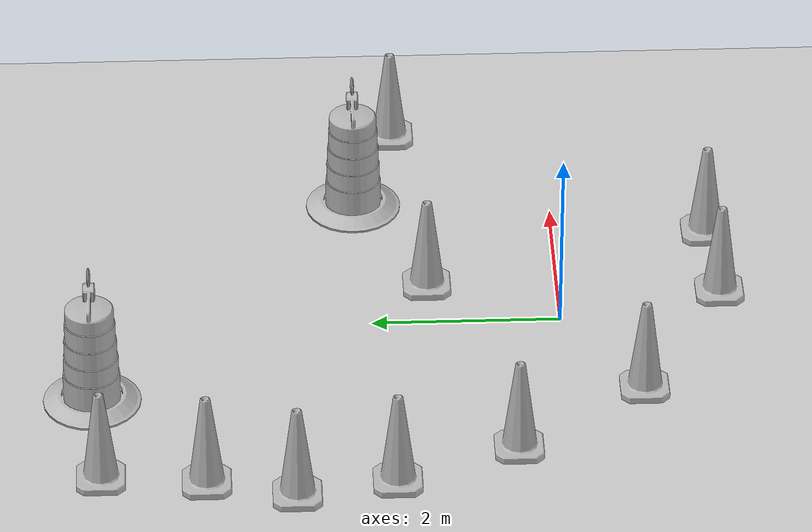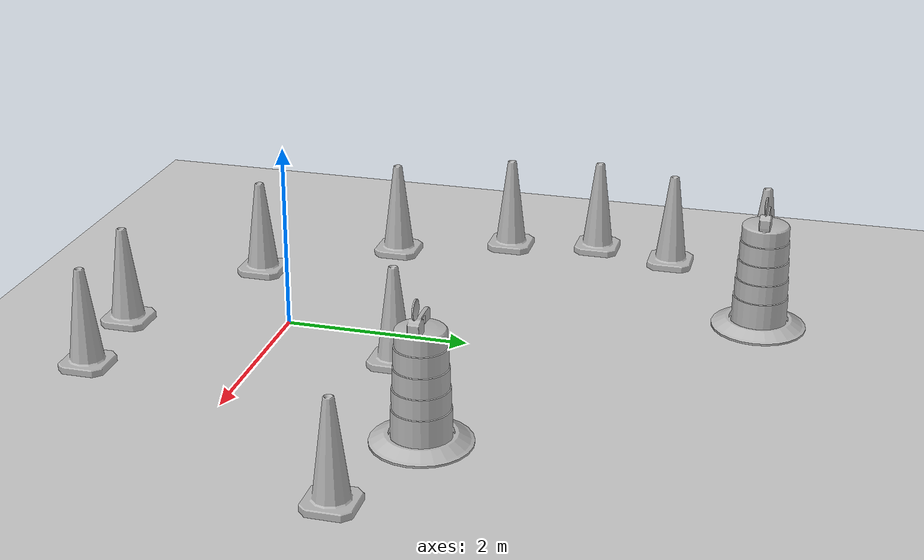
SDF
<sdf version="1.7">
 <world name="default">
  <light name="sun" type="directional">
   <pose>0 0 10 0 -0 0</pose>
   <diffuse>0.8 0.8 0.8 1</diffuse>
   <specular>0.2 0.2 0.2 1</specular>
   <attenuation>
    <range>1000</range>
    <constant>0.9</constant>
    <linear>0.01</linear>
    <quadratic>0.001</quadratic>
   </attenuation>
   <direction>-0.5 0.1 -0.9</direction>
   <spot><inner_angle>0</inner_angle><outer_angle>0</outer_angle><falloff>0</falloff></spot>
  </light>
  <model name="ground_plane">
   <static>1</static>
   <link name="link">
    <collision name="collision">
     <geometry><plane><normal>0 0 1</normal><size>100 100</size></plane></geometry>
     <surface><friction><ode><mu>100</mu><mu2>50</mu2></ode></friction></surface>
    </collision>
    <visual name="visual">
     <cast_shadows>0</cast_shadows>
     <geometry><plane><normal>0 0 1</normal><size>100 100</size></plane></geometry>
     <material>
      <script><uri>file://media/materials/scripts/gazebo.material</uri><name>Gazebo/Grey</name></script>
     </material>
    </visual>
   </link>
  </model>
  <gravity>0 0 -9.8</gravity>
  <magnetic_field>6e-06 2.3e-05 -4.2e-05</magnetic_field>
  <atmosphere type="adiabatic"/>
  <physics type="ode">
   <max_step_size>0.001</max_step_size>
   <real_time_factor>1</real_time_factor>
   <real_time_update_rate>1000</real_time_update_rate>
  </physics>
  <scene><ambient>0.4 0.4 0.4 1</ambient><background>0.7 0.7 0.7 1</background><shadows>1</shadows></scene>
  <audio><device>default</device></audio>
  <spherical_coordinates>
   <surface_model>EARTH_WGS84</surface_model>
   <latitude_deg>0</latitude_deg>
   <longitude_deg>0</longitude_deg>
   <elevation>0</elevation>
   <heading_deg>0</heading_deg>
  </spherical_coordinates>
  <model name="Construction Cone">
   <link name="link">
    <collision name="collision">
     <geometry>
      <mesh><scale>10 10 10</scale><uri>model://construction_cone/meshes/construction_cone.dae</uri></mesh>
     </geometry>
    </collision>
    <visual name="visual">
     <geometry>
      <mesh><scale>10 10 10</scale><uri>model://construction_cone/meshes/construction_cone.dae</uri></mesh>
     </geometry>
    </visual>
    <inertial>
     <inertia><ixx>1</ixx><ixy>0</ixy><ixz>0</ixz><iyy>1</iyy><iyz>0</iyz><izz>1</izz></inertia>
     <mass>1</mass>
    </inertial>
   </link>
   <pose>-2.77998 1.83038 -0 0 -0 0</pose>
  </model>
  <model name="Construction Cone_0">
   <link name="link">
    <collision name="collision">
     <geometry>
      <mesh><scale>10 10 10</scale><uri>model://construction_cone/meshes/construction_cone.dae</uri></mesh>
     </geometry>
    </collision>
    <visual name="visual">
     <geometry>
      <mesh><scale>10 10 10</scale><uri>model://construction_cone/meshes/construction_cone.dae</uri></mesh>
     </geometry>
    </visual>
    <inertial>
     <inertia><ixx>1</ixx><ixy>0</ixy><ixz>0</ixz><iyy>1</iyy><iyz>0</iyz><izz>1</izz></inertia>
     <mass>1</mass>
    </inertial>
   </link>
   <pose>0.648174 1.39178 -0 0 -0 0</pose>
  </model>
  <model name="Construction Cone_1">
   <link name="link">
    <collision name="collision">
     <geometry>
      <mesh><scale>10 10 10</scale><uri>model://construction_cone/meshes/construction_cone.dae</uri></mesh>
     </geometry>
    </collision>
    <visual name="visual">
     <geometry>
      <mesh><scale>10 10 10</scale><uri>model://construction_cone/meshes/construction_cone.dae</uri></mesh>
     </geometry>
    </visual>
    <inertial>
     <inertia><ixx>1</ixx><ixy>0</ixy><ixz>0</ixz><iyy>1</iyy><iyz>0</iyz><izz>1</izz></inertia>
     <mass>1</mass>
    </inertial>
   </link>
   <pose>-1.2753 -0.796966 -0 -0 -0 -0</pose>
  </model>
  <model name="Construction Cone_2">
   <link name="link">
    <collision name="collision">
     <geometry>
      <mesh><scale>10 10 10</scale><uri>model://construction_cone/meshes/construction_cone.dae</uri></mesh>
     </geometry>
    </collision>
    <visual name="visual">
     <geometry>
      <mesh><scale>10 10 10</scale><uri>model://construction_cone/meshes/construction_cone.dae</uri></mesh>
     </geometry>
    </visual>
    <inertial>
     <inertia><ixx>1</ixx><ixy>0</ixy><ixz>0</ixz><iyy>1</iyy><iyz>0</iyz><izz>1</izz></inertia>
     <mass>1</mass>
    </inertial>
   </link>
   <pose>-2.73832 3.77508 -0 0 -0 0</pose>
  </model>
  <model name="Construction Barrel">
   <link name="link">
    <inertial>
     <pose>0 0 0.4 0 -0 0</pose>
     <mass>500</mass>
     <inertia><ixx>51.2096</ixx><iyy>51.2096</iyy><izz>25</izz><ixy>0</ixy><ixz>0</ixz><iyz>0</iyz></inertia>
    </inertial>
    <collision name="collision">
     <geometry><mesh><uri>model://construction_barrel/meshes/construction_barrel.dae</uri></mesh></geometry>
    </collision>
    <visual name="visual">
     <geometry><mesh><uri>model://construction_barrel/meshes/construction_barrel.dae</uri></mesh></geometry>
    </visual>
   </link>
   <pose>-1.2649 4.94834 1e-06 3e-06 2e-06 -1.5e-05</pose>
  </model>
  <model name="Construction Barrel_0">
   <link name="link">
    <inertial>
     <pose>0 0 0.4 0 -0 0</pose>
     <mass>500</mass>
     <inertia><ixx>51.2096</ixx><iyy>51.2096</iyy><izz>25</izz><ixy>0</ixy><ixz>0</ixz><iyz>0</iyz></inertia>
    </inertial>
    <collision name="collision">
     <geometry><mesh><uri>model://construction_barrel/meshes/construction_barrel.dae</uri></mesh></geometry>
    </collision>
    <visual name="visual">
     <geometry><mesh><uri>model://construction_barrel/meshes/construction_barrel.dae</uri></mesh></geometry>
    </visual>
   </link>
   <pose>2.18476 2.12803 -5e-06 -7e-06 -1e-05 -1.5e-05</pose>
  </model>
  <model name="Construction Cone_3">
   <link name="link">
    <collision name="collision">
     <geometry>
      <mesh><scale>10 10 10</scale><uri>model://construction_cone/meshes/construction_cone.dae</uri></mesh>
     </geometry>
    </collision>
    <visual name="visual">
     <geometry>
      <mesh><scale>10 10 10</scale><uri>model://construction_cone/meshes/construction_cone.dae</uri></mesh>
     </geometry>
    </visual>
    <inertial>
     <inertia><ixx>1</ixx><ixy>0</ixy><ixz>0</ixz><iyy>1</iyy><iyz>0</iyz><izz>1</izz></inertia>
     <mass>1</mass>
    </inertial>
   </link>
   <pose>1.53866 -1.65449 -0 0 -1e-06 0</pose>
  </model>
  <model name="Construction Cone_4">
   <link name="link">
    <collision name="collision">
     <geometry>
      <mesh><scale>10 10 10</scale><uri>model://construction_cone/meshes/construction_cone.dae</uri></mesh>
     </geometry>
    </collision>
    <visual name="visual">
     <geometry>
      <mesh><scale>10 10 10</scale><uri>model://construction_cone/meshes/construction_cone.dae</uri></mesh>
     </geometry>
    </visual>
    <inertial>
     <inertia><ixx>1</ixx><ixy>0</ixy><ixz>0</ixz><iyy>1</iyy><iyz>0</iyz><izz>1</izz></inertia>
     <mass>1</mass>
    </inertial>
   </link>
   <pose>-2.26287 0.564475 -0 0 -1e-06 0</pose>
  </model>
  <model name="Construction Cone_5">
   <link name="link">
    <collision name="collision">
     <geometry>
      <mesh><scale>10 10 10</scale><uri>model://construction_cone/meshes/construction_cone.dae</uri></mesh>
     </geometry>
    </collision>
    <visual name="visual">
     <geometry>
      <mesh><scale>10 10 10</scale><uri>model://construction_cone/meshes/construction_cone.dae</uri></mesh>
     </geometry>
    </visual>
    <inertial>
     <inertia><ixx>1</ixx><ixy>0</ixy><ixz>0</ixz><iyy>1</iyy><iyz>0</iyz><izz>1</izz></inertia>
     <mass>1</mass>
    </inertial>
   </link>
   <pose>0.423521 -1.71824 0 -0 -0 -0</pose>
  </model>
  <model name="Construction Cone_6">
   <link name="link">
    <collision name="collision">
     <geometry>
      <mesh><scale>10 10 10</scale><uri>model://construction_cone/meshes/construction_cone.dae</uri></mesh>
     </geometry>
    </collision>
    <visual name="visual">
     <geometry>
      <mesh><scale>10 10 10</scale><uri>model://construction_cone/meshes/construction_cone.dae</uri></mesh>
     </geometry>
    </visual>
    <inertial>
     <inertia><ixx>1</ixx><ixy>0</ixy><ixz>0</ixz><iyy>1</iyy><iyz>0</iyz><izz>1</izz></inertia>
     <mass>1</mass>
    </inertial>
   </link>
   <pose>3.50717 1.68202 -0 0 -1e-06 0</pose>
  </model>
  <model name="Construction Cone_7">
   <link name="link">
    <collision name="collision">
     <geometry>
      <mesh><scale>10 10 10</scale><uri>model://construction_cone/meshes/construction_cone.dae</uri></mesh>
     </geometry>
    </collision>
    <visual name="visual">
     <geometry>
      <mesh><scale>10 10 10</scale><uri>model://construction_cone/meshes/construction_cone.dae</uri></mesh>
     </geometry>
    </visual>
    <inertial>
     <inertia><ixx>1</ixx><ixy>0</ixy><ixz>0</ixz><iyy>1</iyy><iyz>0</iyz><izz>1</izz></inertia>
     <mass>1</mass>
    </inertial>
   </link>
   <pose>-2.97056 2.85832 0 -0 -0 -0</pose>
  </model>
  <model name="Construction Cone_8">
   <link name="link">
    <collision name="collision">
     <geometry>
      <mesh><scale>10 10 10</scale><uri>model://construction_cone/meshes/construction_cone.dae</uri></mesh>
     </geometry>
    </collision>
    <visual name="visual">
     <geometry>
      <mesh><scale>10 10 10</scale><uri>model://construction_cone/meshes/construction_cone.dae</uri></mesh>
     </geometry>
    </visual>
    <inertial>
     <inertia><ixx>1</ixx><ixy>0</ixy><ixz>0</ixz><iyy>1</iyy><iyz>0</iyz><izz>1</izz></inertia>
     <mass>1</mass>
    </inertial>
   </link>
   <pose>-2.62805 4.85273 -0 0 -1e-06 0</pose>
  </model>
 </world>
</sdf>
